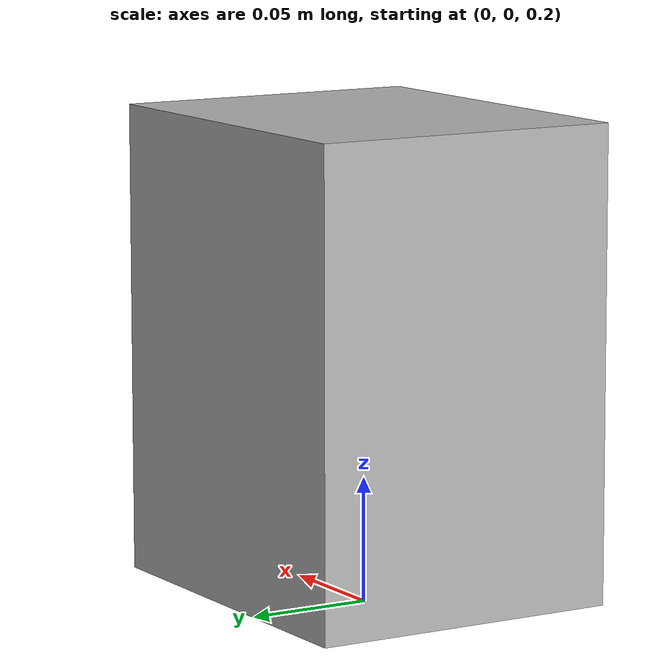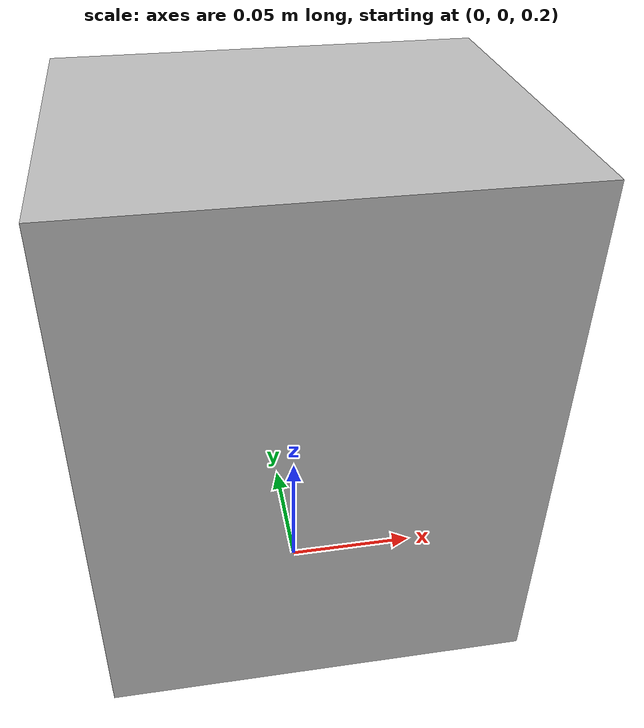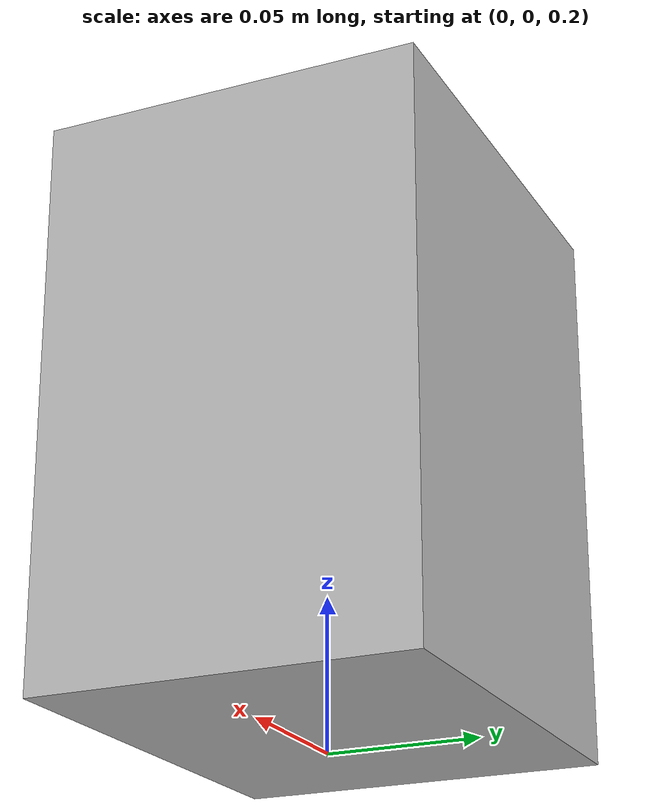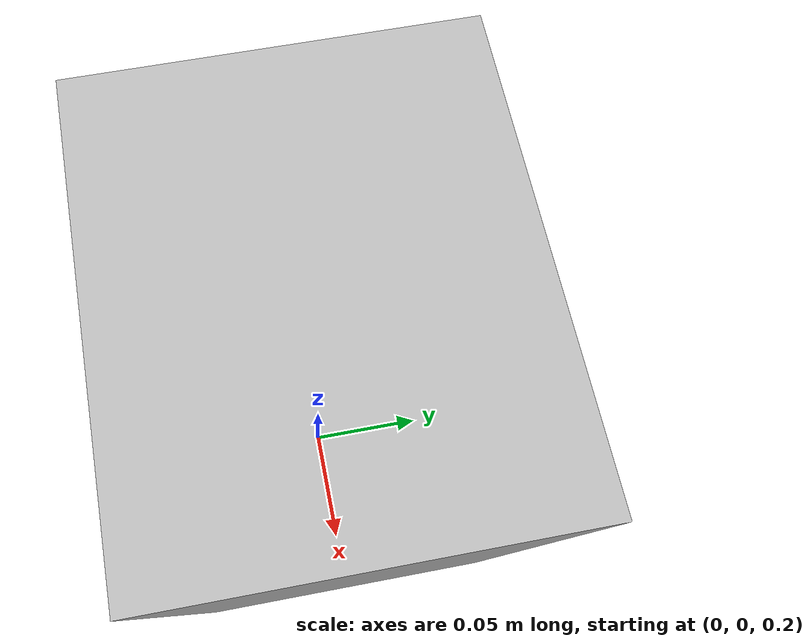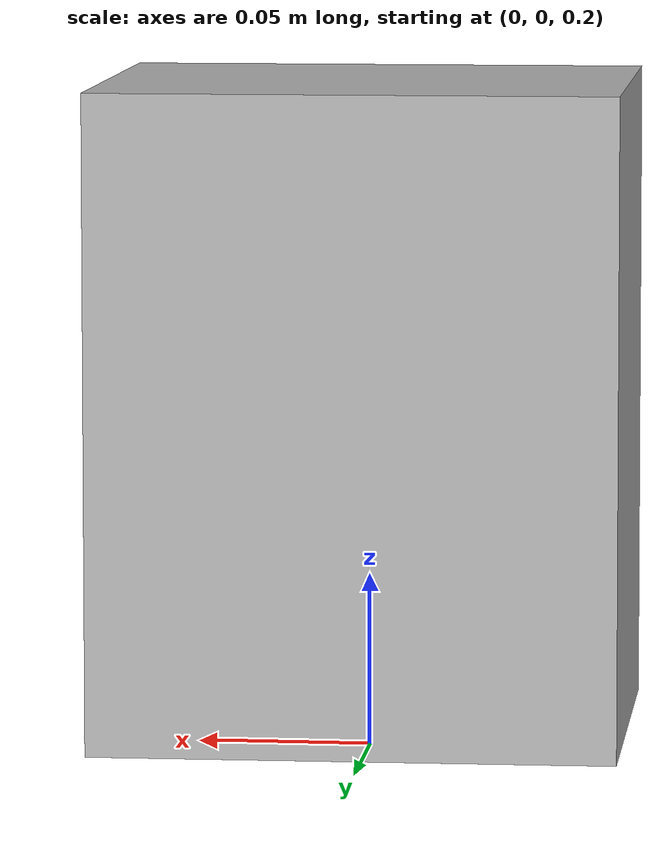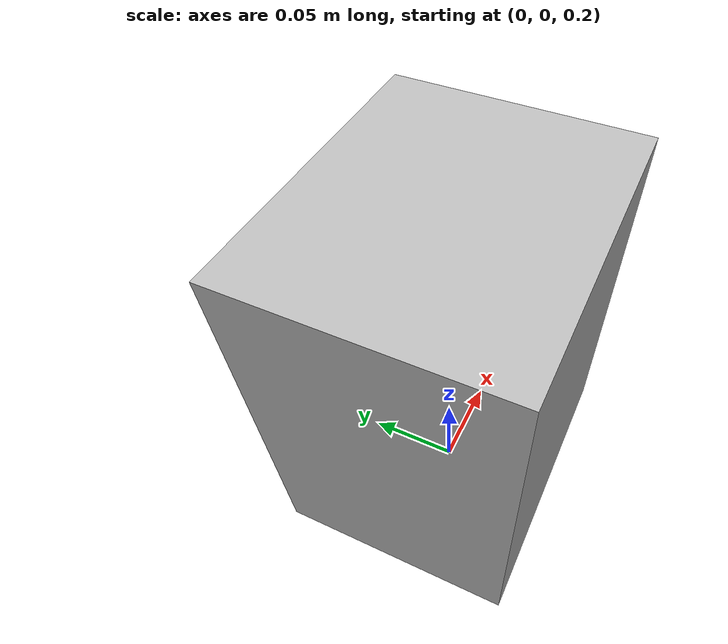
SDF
<?xml version="1.0" ?>
<sdf version="1.5">
  <model name="parachute_package">
    <link name="base_link">
      <pose>0 0 0  0 0 0</pose>
      <inertial>
        <pose>0 0 0  0 0 0</pose>
        <mass>1.00</mass>
        <inertia>
          <ixx>0.010000</ixx>
          <ixy>0.000000</ixy>
          <ixz>0.000000</ixz>
          <iyy>0.010000</iyy>
          <iyz>0.000000</iyz>
          <izz>0.010000</izz>
        </inertia>
      </inertial>
      <collision name="collision">
        <pose>0 0 0.3  0 0 0</pose>
        <geometry>
          <box>
              <size>0.15 0.1 0.18</size>
          </box>
        </geometry>
	      <surface>
          <contact>
            <ode>
              <max_vel>0.1</max_vel>
              <min_depth>0.001</min_depth>
            </ode>
          </contact>
        </surface>
      </collision>
      <visual name="visual">
        <pose>0 0 0.3  0 0 0</pose>
        <geometry>
          <mesh>
            <scale>0.125 0.125 0.125</scale>
            <uri>model://big_box/meshes/big_box.dae</uri>
          </mesh>
	      </geometry>
      </visual>
    </link>
    </model>
</sdf>
